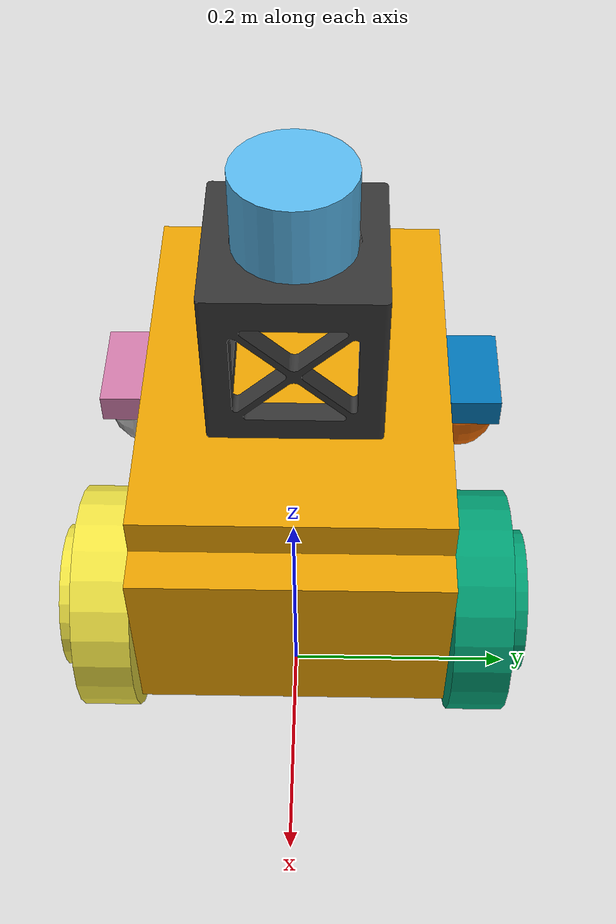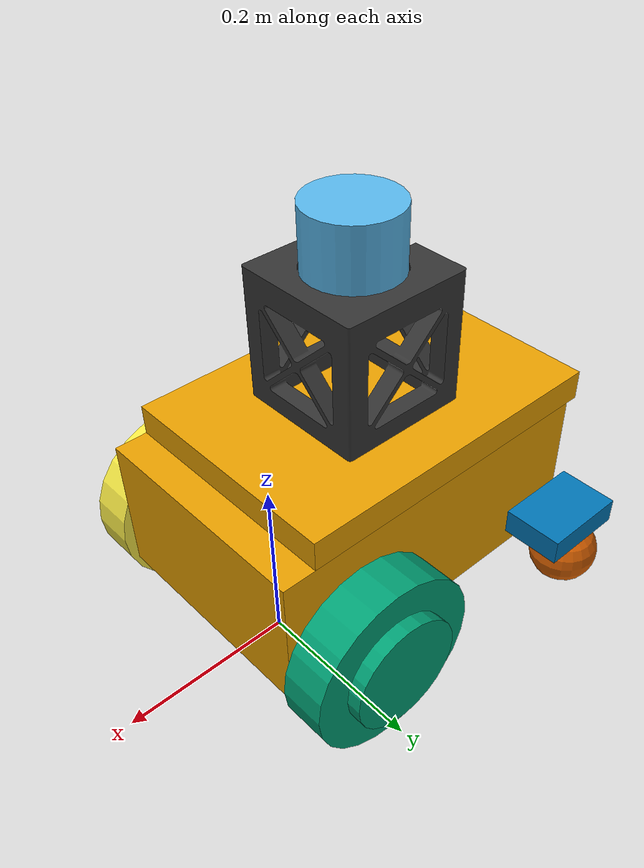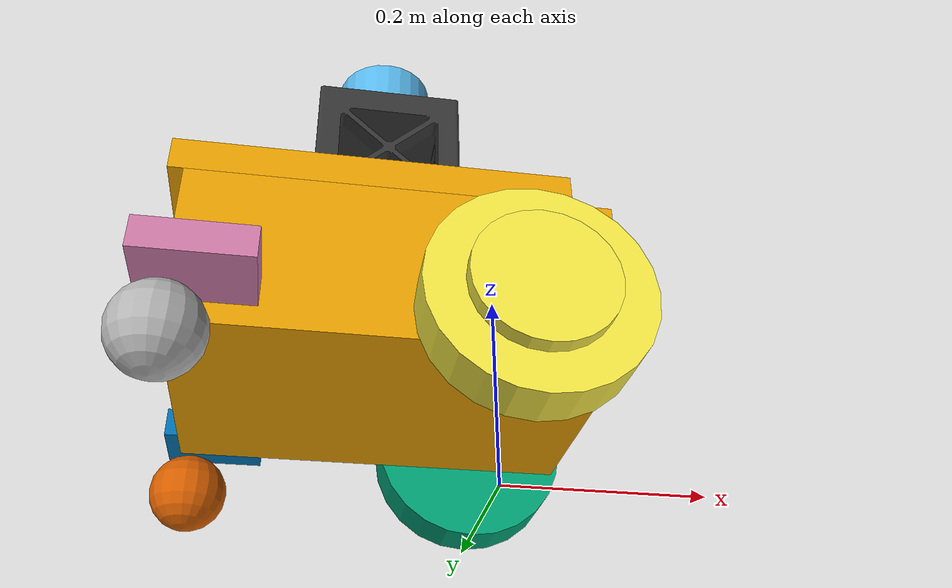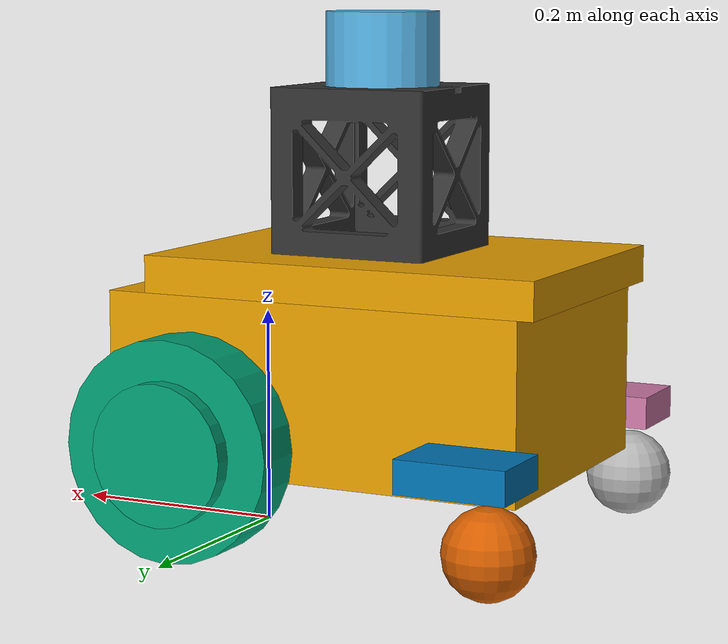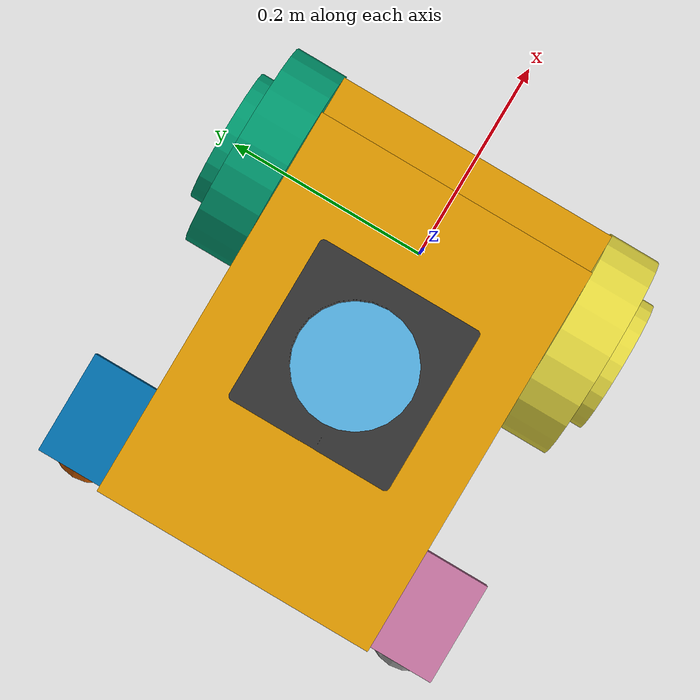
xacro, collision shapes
<?xml version="1.0"?>
<robot xmlns:xacro="http://wiki.ros.org/xacro" name="magni">
  <xacro:property name="M_PI" value="3.1415926535897931" />

  <xacro:property name="wheel_r" value="0.1" />
  <xacro:property name="wheel_xpos" value="0.11" />

  <xacro:include filename="$(find magni_description)/urdf/magni.transmission.xacro" />
  <xacro:include filename="$(find magni_description)/urdf/magni.gazebo.xacro" />
  <xacro:include filename="$(find magni_description)/urdf/inertial.xacro" />

  <!-- Robot base_link -->
  <link name="base_link">
    <visual>
      <origin xyz="${-wheel_xpos} 0 ${-wheel_r+0.071}" rpy="0 0 0" />
      <geometry>
        <mesh filename="package://magni_description/meshes/magni_body.dae" />
      </geometry>
    </visual>

    <!-- Base Chassis -->
    <collision>
	    <origin xyz="${-wheel_xpos} 0 ${-wheel_r+0.151}" rpy="0 0 0" />
      <geometry>
        <box size="0.398 0.268 0.160"/>
      </geometry>
    </collision>

    <!-- Top plate -->
    <collision>
      <origin xyz="${-wheel_xpos-0.026} 0 ${-wheel_r+0.248}" rpy="0 0 0" />
      <geometry>
        <box size="0.375 0.268 0.034"/>
      </geometry>
    </collision>
    <xacro:box_inertial_with_origin  x="0.398" y="0.268" z="0.160" mass="8">
      <origin xyz="-0.15 0 0.03" rpy="0 0 0" />
    </xacro:box_inertial_with_origin>
  </link>

  <!-- Fixed offset from the floor to the center of the wheels -->
  <link name="base_footprint" />
  <joint name="base_footprint_joint" type="fixed">
    <parent link="base_footprint"/>
    <child link="base_link"/>
    <origin xyz="0 0 ${wheel_r}" rpy="0 0 0"/>
  </joint>

  <!-- Macro for defining wheels -->
  <xacro:macro name="wheel" params="prefix reflect">
    <link name="${prefix}_wheel">
      <visual>
        <origin xyz="${-0.071*reflect} 0 0" rpy="0 ${(reflect-1)*pi/2} 0" />
        <geometry>
          <mesh filename="package://magni_description/meshes/front_wheel.dae" />
        </geometry>
      </visual>
      <collision>
        <origin xyz="0 0 0" rpy="0 ${pi/2} 0" />
        <geometry>
          <cylinder radius="${wheel_r}" length="0.05"/>
        </geometry>
      </collision>
      <collision>
        <origin xyz="${0.033*reflect} 0 0" rpy="0 ${pi/2} 0" />
        <geometry>
          <cylinder radius="0.064" length="0.016"/>
        </geometry>
      </collision>
      <xacro:cylinder_inertial_with_origin radius="${wheel_r}" length="0.05" mass="3.34">
        <origin xyz="0 0 0" rpy="0 ${pi/2} 0" />
      </xacro:cylinder_inertial_with_origin>
    </link>
    <joint name="${prefix}_wheel_joint" type="continuous">
      <axis xyz="1 0 0" rpy="0 0 0" />
      <parent link="base_link"/>
      <child link="${prefix}_wheel"/>
      <origin xyz="0 ${0.163*reflect} 0" rpy="0 0 ${pi/2}"/>
    </joint>
  </xacro:macro>

  <xacro:wheel prefix="left" reflect="1"/>
  <xacro:wheel prefix="right" reflect="-1"/>

  <!-- Macro for defining caster wheels -->
  <xacro:macro name="caster_wheel" params="prefix reflect">
    <link name="${prefix}_caster_wheel_mount">
      <collision>
        <geometry>
          <box size="0.1 0.07 0.03"/>
        </geometry>
      </collision>
    </link>

    <joint name="${prefix}_caster_mount_joint" type="fixed">
      <parent link="base_link"/>
      <child link="${prefix}_caster_wheel_mount"/>
      <origin xyz="${-wheel_xpos-0.169} ${0.169 * reflect} ${-wheel_r+0.106}" rpy="0 0 0" />
    </joint>

    <link name="${prefix}_caster_wheel">
      <visual>
        <geometry>
          <mesh filename="package://magni_description/meshes/caster_wheel.dae" />
        </geometry>
      </visual>
      <collision>
        <origin xyz="0.021 0 ${-wheel_r+0.0478}" rpy="0 0 0" />
        <geometry>
          <sphere radius="0.04"/>
        </geometry>
      </collision>
      <xacro:sphere_inertial_with_origin radius="0.04" mass="0.5" >
        <origin xyz="0 0 0" rpy="0 0 0" />
      </xacro:sphere_inertial_with_origin>
    </link>

    <joint name="${prefix}_caster_wheel_joint" type="fixed">
      <parent link="${prefix}_caster_wheel_mount"/>
      <child link="${prefix}_caster_wheel"/>
      <origin xyz="0.0 0 -0.013" rpy="0 0 ${pi}" />
    </joint>
  </xacro:macro>

  <xacro:caster_wheel prefix="left" reflect="1"/>
  <xacro:caster_wheel prefix="right" reflect="-1"/>

  <!-- Velodyne support structure -->
  <link name="velodyne_support">
    <xacro:box_inertial_with_origin x="0.150028" y="0.150028" z="0.150028" mass="1e-9" >
      <origin xyz="0 0 0" rpy="0.0 0.0 0.0" />
    </xacro:box_inertial_with_origin>
    <visual>
      <origin xyz="0 0 0" rpy="0.0 0.0 0.0" />
      <geometry>
        <mesh filename="package://magni_octonav/meshes/support.stl" />
      </geometry>
      <material name="black" >
        <color rgba="0.2 0.2 0.2 1.0"/>
      </material>
    </visual>
    <collision>
      <geometry>
        <mesh filename="package://magni_octonav/meshes/support.dae" />
      </geometry>
    </collision>
  </link>

  <!-- Velodyne URDF, plugin, etc -->
  <xacro:include filename="$(find magni_octonav)/urdf/VLP-16.urdf.xacro"/>
  <xacro:VLP-16 parent="velodyne_support" name="velodyne" topic="/velodyne_points" hz="10" gpu="true">
    <origin xyz="0 0 0.145028" rpy="0 0 0" />
  </xacro:VLP-16>

  <joint name="velodyne_support_joint" type="fixed">
    <parent link="base_link"/>
    <child link="velodyne_support"/>
    <origin xyz="-0.12 0 0.164" rpy="0 0 0"/>
  </joint>

</robot>

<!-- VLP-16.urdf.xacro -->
<robot xmlns:xacro="http://www.ros.org/wiki/xacro" name="VLP-16">
  <xacro:property name="M_PI" value="3.1415926535897931" />
  <xacro:macro name="VLP-16" params="*origin parent:=base_link name:=velodyne topic:=/velodyne_points hz:=10 lasers:=16 samples:=1808 collision_range:=0.3 min_range:=0.1 max_range:=120.0 noise:=0.008 min_angle:=-${M_PI} max_angle:=${M_PI} gpu:=true">

    <joint name="${name}_base_mount_joint" type="fixed">
      <xacro:insert_block name="origin" />
      <parent link="${parent}"/>
      <child link="${name}_base_link"/>
    </joint>

    <link name="${name}_base_link">
      <inertial>
        <mass value="0.83"/>
        <origin xyz="0 0 0.03585"/>
        <inertia ixx="${(0.83 * (3.0*0.0516*0.0516 + 0.0717*0.0717)) / 12.0}" ixy="0" ixz="0"
          iyy="${(0.83 * (3.0*0.0516*0.0516 + 0.0717*0.0717)) / 12.0}" iyz="0"
          izz="${0.5 * 0.83 * (0.0516*0.0516)}"/>
      </inertial>
      <visual>
        <geometry>
          <mesh filename="package://velodyne_description/meshes/VLP16_base_1.dae" />
        </geometry>
      </visual>
      <visual>
        <geometry>
          <mesh filename="package://velodyne_description/meshes/VLP16_base_2.dae" />
        </geometry>
      </visual>
      <collision>
        <origin rpy="0 0 0" xyz="0 0 0.03585"/>
        <geometry>
          <cylinder radius="0.0516" length="0.0717"/>
        </geometry>
      </collision>
    </link>

    <joint name="${name}_base_scan_joint" type="fixed" >
      <origin xyz="0 0 0.0377" rpy="0 0 0" />
      <parent link="${name}_base_link" />
      <child link="${name}"/>
    </joint>

    <link name="${name}">
      <inertial>
        <mass value="0.01"/>
        <origin xyz="0 0 0"/>
        <inertia ixx="1e-7" ixy="0" ixz="0" iyy="1e-7" iyz="0" izz="1e-7"/>
      </inertial>
      <visual>
        <origin xyz="0 0 -0.0377" />
        <geometry>
          <mesh filename="package://velodyne_description/meshes/VLP16_scan.dae" />
        </geometry>
      </visual>
    </link>

    <!-- Gazebo requires the velodyne_gazebo_plugins package -->
    <gazebo reference="${name}">
      <xacro:if value="${gpu}">
        <sensor type="gpu_ray" name="${name}-VLP16">
          <pose>0 0 0 0 0 0</pose>
          <visualize>false</visualize>
          <update_rate>${hz}</update_rate>
          <ray>
            <scan>
              <horizontal>
                <samples>${samples}</samples>
                <resolution>1</resolution>
                <min_angle>${min_angle}</min_angle>
                <max_angle>${max_angle}</max_angle>
              </horizontal>
              <vertical>
                <samples>${lasers}</samples>
                <resolution>1</resolution>
                <min_angle>-${15.0*M_PI/180.0}</min_angle>
                <max_angle> ${15.0*M_PI/180.0}</max_angle>
              </vertical>
            </scan>
            <range>
              <min>${collision_range}</min>
              <max>${max_range+1}</max>
              <resolution>0.001</resolution>
            </range>
            <noise>
              <type>gaussian</type>
              <mean>0.0</mean>
              <stddev>0.0</stddev>
            </noise>
          </ray>
          <plugin name="gazebo_ros_laser_controller" filename="libgazebo_ros_velodyne_gpu_laser.so">
            <topicName>${topic}</topicName>
            <frameName>${name}</frameName>
            <min_range>${min_range}</min_range>
            <max_range>${max_range}</max_range>
            <gaussianNoise>${noise}</gaussianNoise>
          </plugin>
        </sensor>
      </xacro:if>
      <xacro:unless value="${gpu}">
        <sensor type="ray" name="${name}-VLP16">
          <pose>0 0 0 0 0 0</pose>
          <visualize>false</visualize>
          <update_rate>${hz}</update_rate>
          <ray>
            <scan>
              <horizontal>
                <samples>${samples}</samples>
                <resolution>1</resolution>
                <min_angle>${min_angle}</min_angle>
                <max_angle>${max_angle}</max_angle>
              </horizontal>
              <vertical>
                <samples>${lasers}</samples>
                <resolution>1</resolution>
                <min_angle>-${15.0*M_PI/180.0}</min_angle>
                <max_angle> ${15.0*M_PI/180.0}</max_angle>
              </vertical>
            </scan>
            <range>
              <min>${collision_range}</min>
              <max>${max_range+1}</max>
              <resolution>0.001</resolution>
            </range>
            <noise>
              <type>gaussian</type>
              <mean>0.0</mean>
              <stddev>0.0</stddev>
            </noise>
          </ray>
          <plugin name="gazebo_ros_laser_controller" filename="libgazebo_ros_velodyne_laser.so">
            <topicName>${topic}</topicName>
            <frameName>${name}</frameName>
            <min_range>${min_range}</min_range>
            <max_range>${max_range}</max_range>
            <gaussianNoise>${noise}</gaussianNoise>
          </plugin>
        </sensor>
      </xacro:unless>
    </gazebo>

  </xacro:macro>
</robot>
